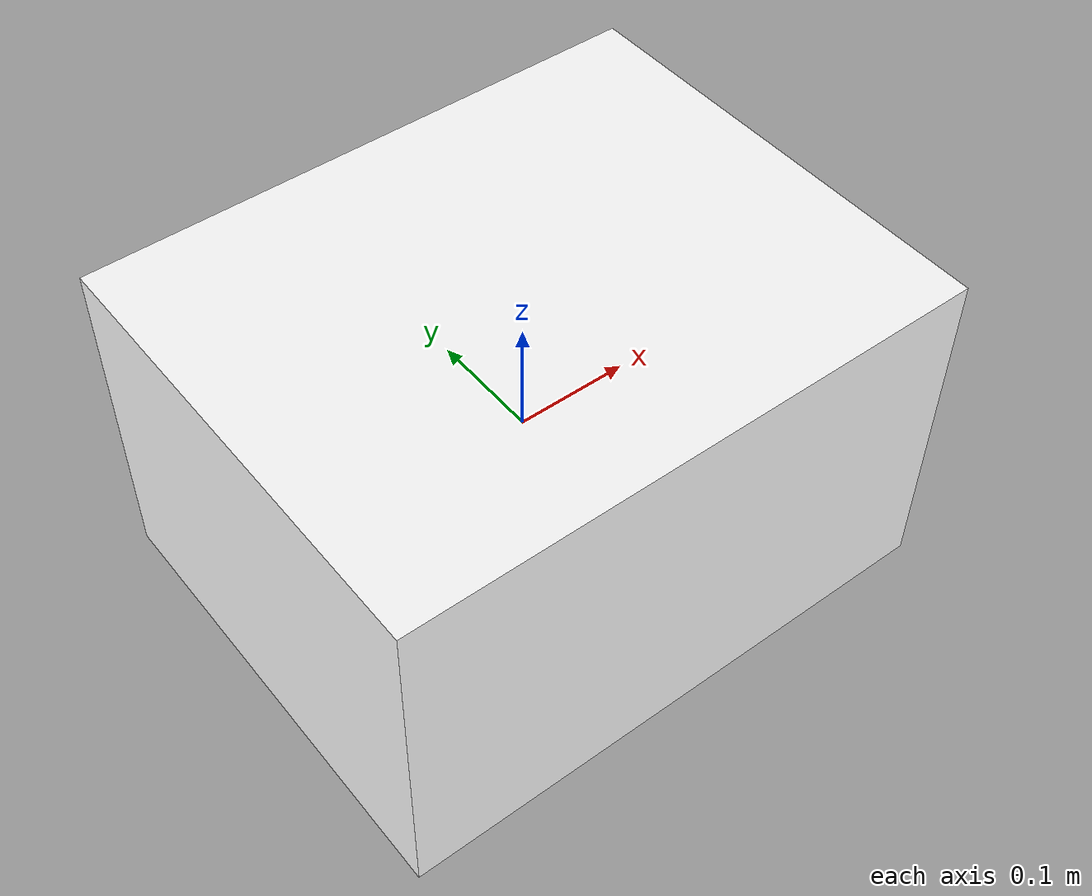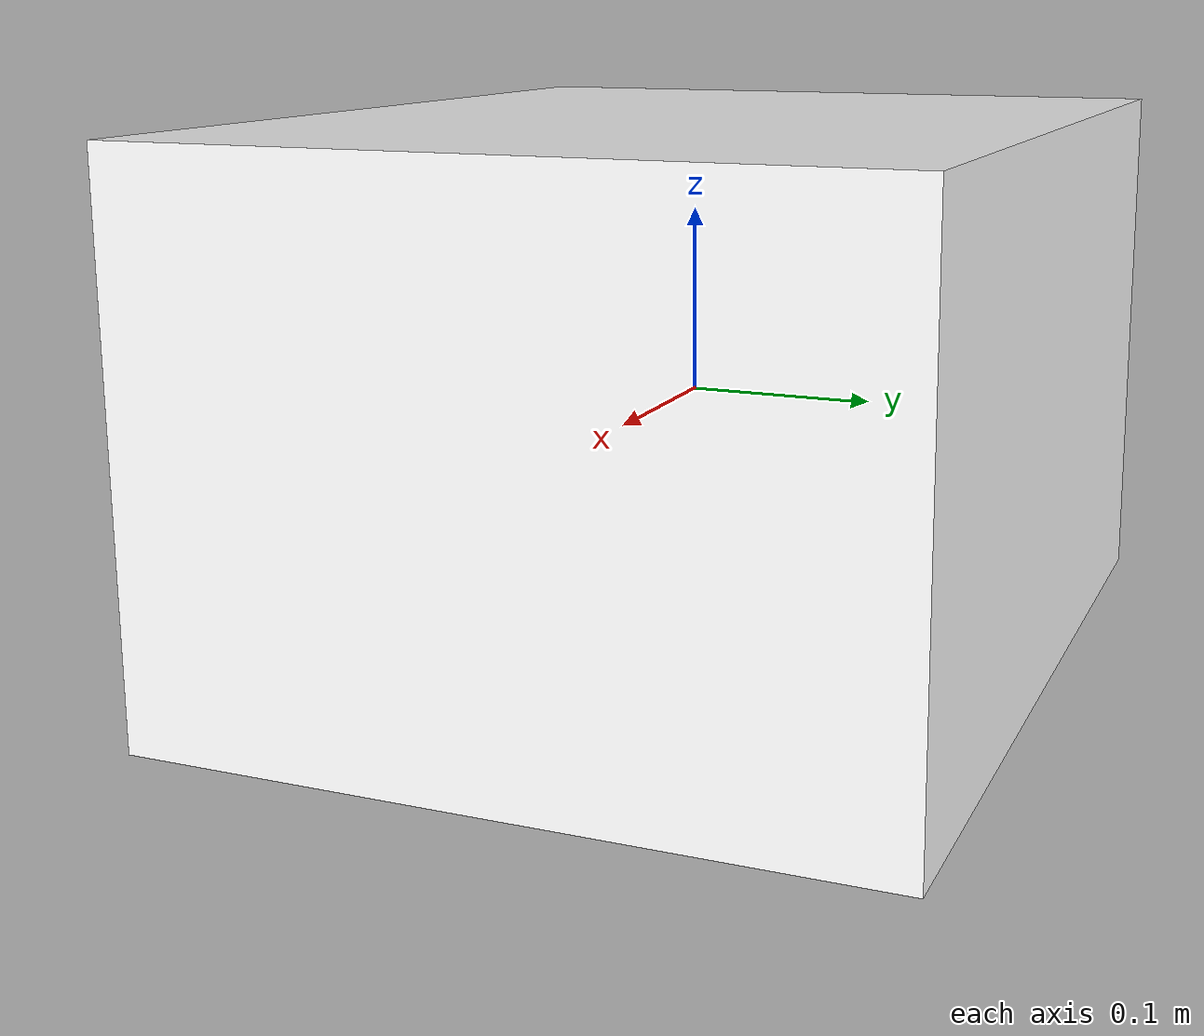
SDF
<?xml version="1.0" ?>
<sdf version="1.9">
  <model name="rag_robot">
    <self_collide>false</self_collide>

    <!-- Base -->
    <link name="base_link">
      <inertial>
        <mass>10.0</mass>
        <inertia>
          <ixx>0.1</ixx>
          <ixy>0.0</ixy>
          <ixz>0.0</ixz>
          <iyy>0.1</iyy>
          <iyz>0.0</iyz>
          <izz>0.1</izz>
        </inertia>
      </inertial>
      <visual name="base_visual">
        <geometry>
          <box>
            <size>0.5 0.4 0.3</size>
          </box>
        </geometry>
        <material>
          <ambient>1 1 1 1</ambient>
          <diffuse>1 1 1 1</diffuse>
        </material>
      </visual>
      <collision name="base_collision">
        <geometry>
          <box>
            <size>0.5 0.4 0.3</size>
          </box>
        </geometry>
      </collision>
    </link>

    <!-- Left Wheel -->
    <link name="left_wheel">
      <inertial>
        <mass>1.0</mass>
        <inertia>
          <ixx>0.01</ixx>
          <ixy>0.0</ixy>
          <ixz>0.0</ixz>
          <iyy>0.01</iyy>
          <iyz>0.0</iyz>
          <izz>0.01</izz>
        </inertia>
      </inertial>
      <visual name="left_wheel_visual">
        <geometry>
          <cylinder>
            <radius>0.1</radius>
            <length>0.1</length>
          </cylinder>
        </geometry>
        <material>
          <ambient>0 0 0 1</ambient>
          <diffuse>0 0 0 1</diffuse>
        </material>
      </visual>
      <collision name="left_wheel_collision">
        <geometry>
          <cylinder>
            <radius>0.1</radius>
            <length>0.1</length>
          </cylinder>
        </geometry>
      </collision>
    </link>

    <!-- Right Wheel -->
    <link name="right_wheel">
      <inertial>
        <mass>1.0</mass>
        <inertia>
          <ixx>0.01</ixx>
          <ixy>0.0</ixy>
          <ixz>0.0</ixz>
          <iyy>0.01</iyy>
          <iyz>0.0</iyz>
          <izz>0.01</izz>
        </inertia>
      </inertial>
      <visual name="right_wheel_visual">
        <geometry>
          <cylinder>
            <radius>0.1</radius>
            <length>0.1</length>
          </cylinder>
        </geometry>
        <material>
          <ambient>0 0 0 1</ambient>
          <diffuse>0 0 0 1</diffuse>
        </material>
      </visual>
      <collision name="right_wheel_collision">
        <geometry>
          <cylinder>
            <radius>0.1</radius>
            <length>0.1</length>
          </cylinder>
        </geometry>
      </collision>
    </link>

    <!-- Caster Wheel -->
    <link name="caster_wheel">
      <inertial>
        <mass>0.5</mass>
        <inertia>
          <ixx>0.001</ixx>
          <ixy>0.0</ixy>
          <ixz>0.0</ixz>
          <iyy>0.001</iyy>
          <iyz>0.0</iyz>
          <izz>0.001</izz>
        </inertia>
      </inertial>
      <visual name="caster_wheel_visual">
        <geometry>
          <sphere>
            <radius>0.05</radius>
          </sphere>
        </geometry>
        <material>
          <ambient>0.5 0.5 0.5 1</ambient>
          <diffuse>0.5 0.5 0.5 1</diffuse>
        </material>
      </visual>
      <collision name="caster_wheel_collision">
        <geometry>
          <sphere>
            <radius>0.05</radius>
          </sphere>
        </geometry>
      </collision>
    </link>

    <!-- Joints -->
    <joint name="left_wheel_joint" type="revolute">
      <parent>base_link</parent>
      <child>left_wheel</child>
      <axis>
        <xyz>0 1 0</xyz>
        <limit>
          <lower>-10</lower>
          <upper>10</upper>
          <effort>10</effort>
          <velocity>1</velocity>
        </limit>
      </axis>
      <pose>-0.15 0.2 0 0 0 0</pose>
    </joint>

    <joint name="right_wheel_joint" type="revolute">
      <parent>base_link</parent>
      <child>right_wheel</child>
      <axis>
        <xyz>0 1 0</xyz>
        <limit>
          <lower>-10</lower>
          <upper>10</upper>
          <effort>10</effort>
          <velocity>1</velocity>
        </limit>
      </axis>
      <pose>-0.15 -0.2 0 0 0 0</pose>
    </joint>

    <joint name="caster_wheel_joint" type="fixed">
      <parent>base_link</parent>
      <child>caster_wheel</child>
      <pose>0.2 0 -0.15 0 0 0</pose>
    </joint>

  </model>
</sdf>
